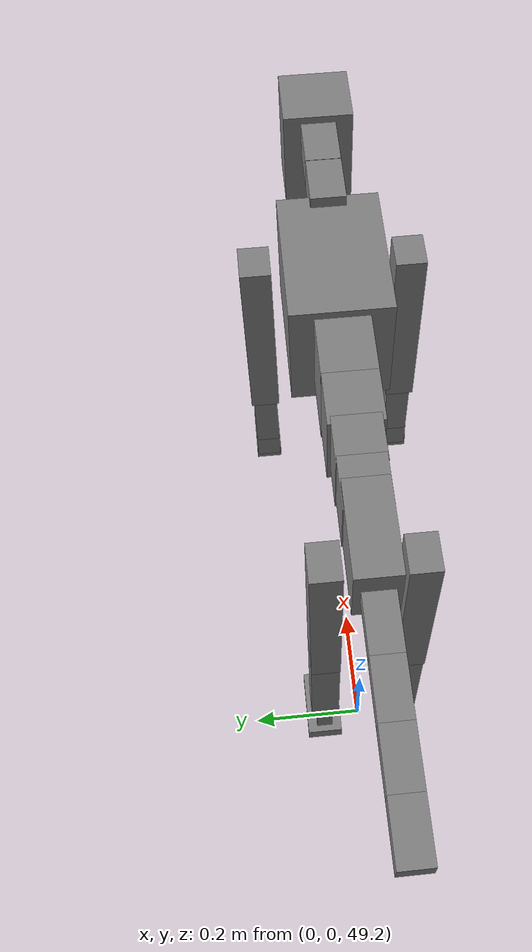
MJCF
<mujoco model="dog">

    <default>
        <joint armature="0.02" stiffness="1" damping="0.2" limited="true"/>
        <geom condim="3" friction="1 0.05 0.05" margin="0.01"/>
        <motor ctrllimited="true" ctrlrange="-1.0 1.0" forcelimited="true" gear="50"/>
    </default>

    <compiler inertiafromgeom="true" angle="radian"/>

    <option timestep="0.016" iterations="50" tolerance="1e-10" solver="Newton" jacobian="dense" cone="pyramidal"/>

    <size nconmax="20000" njmax="60000" nstack="5000000"/>
    <visual>
        <map force="0.1" zfar="30"/>
        <rgba haze="0.15 0.25 0.35 1"/>
        <quality shadowsize="2048"/>
        <global offwidth="800" offheight="800"/>
    </visual>

    <asset>
        <texture type="skybox" builtin="gradient" rgb1="0.3 0.5 0.7" rgb2="0 0 0" width="512" height="512"/>
        <texture name="texplane" type="2d" builtin="checker" rgb1=".2 .3 .4" rgb2=".1 0.15 0.2" width="512" height="512"
                 mark="cross" markrgb=".8 .8 .8"/>
        <texture name="texgeom" type="cube" builtin="flat" mark="cross" width="127" height="1278" rgb1="0.8 0.6 0.4"
                 rgb2="0.8 0.6 0.4" markrgb="1 1 1" random="0.01"/>

        <material name="matplane" reflectance="0.3" texture="texplane" texrepeat="1 1" texuniform="true"/>
        <material name="matgeom" texture="texgeom" texuniform="true" rgba="0.8 0.6 .4 1"/>
    </asset>

    <worldbody>
        <geom name="floor" pos="0 0 0" size="0 0 .25" type="plane" material="matplane" condim="3"/>

        <light directional="false" diffuse=".2 .2 .2" specular="0 0 0" pos="0 0 5" dir="0 0 -1" castshadow="false"/>
        <light mode="targetbodycom" target="torso" directional="false" diffuse=".8 .8 .8" specular="0.3 0.3 0.3"
               pos="0 0 4.0" dir="0 0 -1"/>

        <body name="root" pos="0 0 50">
            <freejoint name="root_1"/>
            <geom type="box" pos="0 0 -0.02" size="0.0774  0.0358  0.063" density="2030"/>

            <body name="spine1" pos="0.054 0 0">
                <joint name="spine1_y" axis="0 1 0" range="0 0.7" limited="true"/>
                <geom type="box" pos="0.02375 0 -0.03" size="0.04375  0.0375  0.05985" density="2030"/>

                <body name="spine2" pos="0.0612 0 0">
                    <joint name="spine2_y" axis="0 1 0" range="-0.15 0.15" limited="true"/>
                    <geom type="box" pos="0.03555  0  -0.04" size="0.04055  0.039  0.06615" density="2030"/>

                    <body name="spine3" pos="0.0730 0 0">
                        <joint name="spine3_y" axis="0 1 0" range="-0.15 0.15" limited="true"/>
                        <geom type="box" pos="0.03555  0  -0.057" size="0.04555  0.0445  0.081" density="2030"/>

                        <body name="spine4" pos="0.0780 0 0">
                            <joint name="spine4_y" axis="0 1 0" range="-0.15 0.15" limited="true"/>
                            <geom type="box" pos="0.05265  0  -0.07" size="0.05265  0.045  0.09135" density="2030"/>

                            <body name="torso" pos="0.1082 0 0">
                                <joint name="torso_y" axis="0 1 0" range="-0.15 0.15" limited="true"/>
                                <geom type="box" pos="0.11925  0  -0.085" size="0.11925  0.085  0.11745"
                                      density="2030"/>

                                <body name="neck1" pos="0.2160  0   0.0180">
                                    <joint name="neck1_y" axis="0 1 0" range="-1.2  -1" limited="true"/>
                                    <geom type="box" pos="0.0423  0  0" size="0.0423  0.03  0.036" density="2325"/>

                                    <body name="neck2" pos="0.0853  0  0">
                                        <joint name="neck2_y" axis="0 1 0" range="0.1  0" limited="true"/>
                                        <geom type="box" pos="0.0423  0  0" size="0.0423  0.03  0.036" density="2325"/>

                                        <body name="head" pos="0.0853  0  0">
                                            <joint name="head_y" axis="0 1 0" range="-0.3  -0.2" limited="true"/>
                                            <geom type="box" pos="0.0531  0  -0.055" size="0.0531  0.06  0.1044"
                                                  density="4030"/>

                                        </body>
                                    </body>
                                </body>

                                <body name="front_shoulder" pos="0.156  0   -0.0480">
                                    <joint name="front_shoulder_y" axis="0 1 0" range="-1 1.5" limited="true"/>
                                    <geom type="box" pos="0 0.13 -0.1711" size="0.0307  0.0263  0.1977" density="1158"/>
                                    <geom type="box" pos="0 -0.13 -0.1711" size="0.0307  0.0263  0.1977"
                                          density="1158"/>

                                    <body name="front_elbow" pos="0  0  -0.3421">
                                        <joint name="front_elbow_y" axis="0 1 0" range="-2 0" limited="true"/>
                                        <geom type="box" pos="0 0.13 -0.0865" size="0.0216  0.0220  0.0865"
                                              density="1081"/>
                                        <geom type="box" pos="0 -0.13 -0.0865" size="0.0216  0.0220  0.0865"
                                              density="1081"/>

                                        <body name="front_wrist" pos="0  0  -0.1729">
                                            <joint name="front_wrist_y" axis="0 1 0" range="-0.2 0" limited="true"/>
                                            <geom type="box" pos="0 0.13 -0.0238" size="0.0204  0.0227  0.0370"
                                                  density="1664"/>
                                            <geom type="box" pos="0 -0.13 -0.0238" size="0.0204  0.0227  0.0370"
                                                  density="1664"/>

                                            <body name="front_finger_end" pos="0  0  -0.0477">
                                                <joint name="front_finger_y" axis="0 1 0" range="-0.4 1"
                                                       limited="true"/>
                                                <geom type="box" pos="0.0244  0.13  -0.0046"
                                                      size="0.0447  0.0244  0.0196" density="1515"/>
                                                <geom type="box" pos="0.0244  -0.13  -0.0046"
                                                      size="0.0447  0.0244  0.0196" density="1515"/>

                                            </body>

                                        </body>
                                    </body>
                                </body>

                            </body>
                        </body>
                    </body>
                </body>
            </body>

            <body name="back_hip" pos="-0.03 0 -0.018">
                <joint name="back_hip_y" axis="0 1 0" range="-1.5 0.3" limited="true"/>
                <geom type="box" pos="0 0.07 -0.1657" size="0.0311  0.0244  0.1885" density="1154"/>
                <geom type="box" pos="0 -0.07 -0.1657" size="0.0311  0.0244  0.1885" density="1154"/>

                <body name="back_knee" pos="0  0  -0.3313">
                    <joint name="back_knee_y" axis="0 1 0" range="0 2.8" limited="true"/>
                    <geom type="box" pos="0 0.07 -0.1304" size="0.0249  0.0245  0.1459" density="1227"/>
                    <geom type="box" pos="0 -0.07 -0.1304" size="0.0249  0.0245  0.1459" density="1227"/>

                    <body name="back_ankle" pos="0  0  -0.2608">
                        <joint name="back_ankle_y" axis="0 1 0" range="-2.2 0" limited="true"/>
                        <geom type="box" pos="0 0.07 -0.0626" size="0.0144  0.0144  0.0739" density="1284"/>
                        <geom type="box" pos="0 -0.07 -0.0626" size="0.0144  0.0144  0.0739" density="1284"/>

                        <body name="back_toe_end" pos="0  0  -0.1253">
                            <joint name="back_toe_y" axis="0 1 0" range="-0.4 1" limited="true"/>
                            <geom type="box" pos="0.0314  0.07  -0.0020" size="0.0575  0.0314  0.0170" density="1515"/>
                            <geom type="box" pos="0.0314  -0.07  -0.0020" size="0.0575  0.0314  0.0170" density="1515"/>

                        </body>
                    </body>
                </body>
            </body>

            <body name="tail1" pos="-0.074 0 -0.006">
                <joint name="tail1_y" axis="0 1 0" range="-0.2 0.2" limited="true"/>
                <geom type="box" pos="-0.0536  0  0" size="0.045  0.025  0.0175" density="1587"/>

                <body name="tail2" pos="-0.09 0 0">
                    <joint name="tail2_y" axis="0 1 0" range="-0.2 0.2" limited="true"/>
                    <geom type="box" pos="-0.0536  0  0" size="0.045  0.025  0.0175" density="1587"/>

                    <body name="tail3" pos="-0.09 0 0">
                        <joint name="tail3_y" axis="0 1 0" range="-0.2 0.2" limited="true"/>
                        <geom type="box" pos="-0.0536  0  0" size="0.045  0.025  0.0175" density="1587"/>

                        <body name="tail4" pos="-0.09 0 0">
                            <joint name="tail4_y" axis="0 1 0" range="-0.2 0.2" limited="true"/>
                            <geom type="box" pos="-0.0536  0  0" size="0.045  0.025  0.0175" density="1587"/>

                        </body>
                    </body>
                </body>
            </body>
        </body>
    </worldbody>

    <actuator>
        <motor joint="spine1_y" forcerange="-150 150     "/>
        <motor joint="spine2_y" forcerange="-150 150     "/>
        <motor joint="spine3_y" forcerange="-150 150     "/>
        <motor joint="spine4_y" forcerange="-150 150     "/>
        <motor joint="torso_y" forcerange="-150 150     "/>
        <motor joint="neck1_y" forcerange="-100 100       "/>
        <motor joint="neck2_y" forcerange="-100 100       "/>
        <motor joint="head_y" forcerange="-150 150       "/>
        <motor joint="front_shoulder_y" forcerange="-143.81 131.27"/>
        <motor joint="front_elbow_y" forcerange="-112.76 147.50"/>
        <motor joint="front_wrist_y" forcerange="-114.17 67.38"/>
        <motor joint="front_finger_y" forcerange="-26.46 63.68"/>
        <motor joint="back_hip_y" forcerange="-220.03 305.31"/>
        <motor joint="back_knee_y" forcerange="-276.49 280.39"/>
        <motor joint="back_angle_y" forcerange="-64.09 66.10"/>
        <motor joint="back_toe_y" forcerange="-120.87 50.17"/>
        <motor joint="tail1_y" forcerange="-50 50     "/>
        <motor joint="tail2_y" forcerange="-50 50     "/>
        <motor joint="tail3_y" forcerange="-50 50     "/>
        <motor joint="tail4_y" forcerange="-50 50     "/>
    </actuator>
</mujoco>
